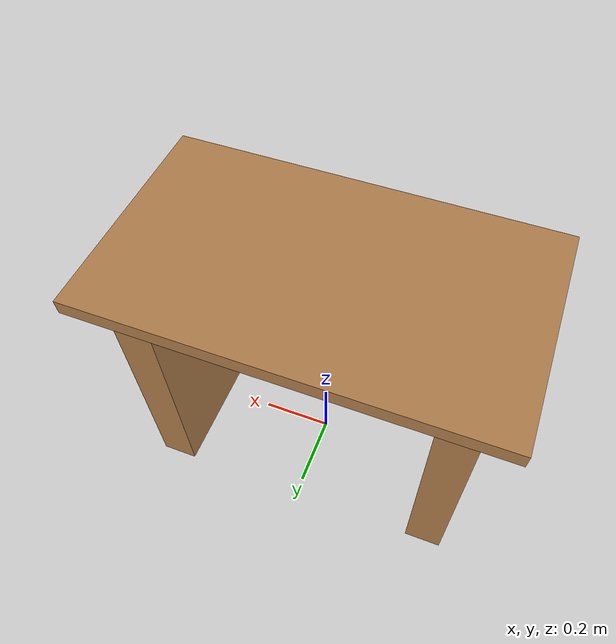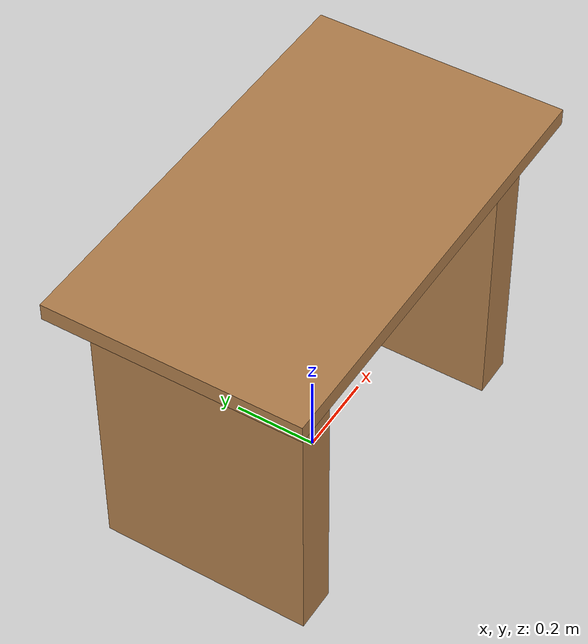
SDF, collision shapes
<?xml version="1.0" ?>
<sdf version="1.5">
    <model name='table_b'>
      <static>1</static>
      <link name='link'>
        <visual name='surface'>
          <pose frame=''>0 0 0.73 0 0 0</pose>
          <geometry>
            <box>
              <size>1.04 0.6 0.04</size>
            </box>
          </geometry>
          <material>
            <script>
              <uri>file://media/materials/scripts/gazebo.material</uri>
              <name>Gazebo/Wood</name>
            </script>
          </material>
        </visual>
        <visual name='leg_left'>
          <pose frame=''>0.39 0 0.355 0 0 0</pose>
          <geometry>
            <box>
              <size>0.1 0.5 0.71</size>
            </box>
          </geometry>
          <material>
            <script>
              <uri>file://media/materials/scripts/gazebo.material</uri>
              <name>Gazebo/Wood</name>
            </script>
          </material>
        </visual>
        <visual name='leg_right'>
          <pose frame=''>-0.39 0 0.355 0 0 0</pose>
          <geometry>
            <box>
              <size>0.1 0.5 0.71</size>
            </box>
          </geometry>
          <material>
            <script>
              <uri>file://media/materials/scripts/gazebo.material</uri>
              <name>Gazebo/Wood</name>
            </script>
          </material>
        </visual>

        <collision name='surface'>
          <pose frame=''>0 0 0.73 0 0 0</pose>
          <geometry>
            <box>
              <size>1.04 0.6 0.04</size>
            </box>
          </geometry>
          <max_contacts>10</max_contacts>
          <surface>
            <contact/>
            <friction>
              <ode/>
            </friction>
          </surface>
        </collision>
        <collision name='leg_left'>
          <pose frame=''>0.39 0 0.355 0 0 0</pose>
          <geometry>
            <box>
              <size>0.1 0.5 0.71</size>
            </box>
          </geometry>
          <max_contacts>10</max_contacts>
          <surface>
            <contact/>
            <friction>
              <ode/>
            </friction>
          </surface>
        </collision>
        <collision name='leg_right'>
          <pose frame=''>-0.39 0 0.355 0 0 0</pose>
          <geometry>
            <box>
              <size>0.1 0.5 0.71</size>
            </box>
          </geometry>
          <max_contacts>10</max_contacts>
          <surface>
            <contact/>
            <friction>
              <ode/>
            </friction>
          </surface>
        </collision>

        <visual name='marker_8'>
          <pose frame=''>0.46 0.24 0.755 0 0 0</pose>
          <geometry>
            <mesh>
              <uri>model://ar_marker_8cm_8/meshes/ar_marker_8cm.dae</uri>
            </mesh>
          </geometry>
        </visual>
        <visual name='marker_9'>
          <pose frame=''>-0.46 0.24 0.755 0 0 0</pose>
          <geometry>
            <mesh>
              <uri>model://ar_marker_8cm_9/meshes/ar_marker_8cm.dae</uri>
            </mesh>
          </geometry>
        </visual>
        <self_collide>0</self_collide>
        <enable_wind>0</enable_wind>
        <gravity>1</gravity>
      </link>
    </model>
</sdf>
